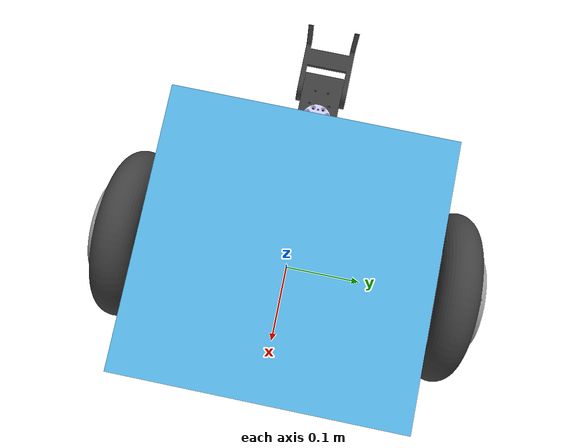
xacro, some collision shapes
<?xml version="1.0"?>
<robot name="amr" xmlns:xacro="http://www.ros.org/wiki/xacro">

  <xacro:include filename="$(find amr_description)/urdf/amr_inertials.xacro"/>

  <!-- Wheels (CAD: tyre torus R77 r23 at y = +-187.1 mm). Match amr_base/config/base.yaml. -->
  <xacro:property name="wheel_radius" value="0.100"/>
  <xacro:property name="wheel_separation" value="0.3742"/>
  <xacro:property name="wheel_width" value="0.046"/>

  <xacro:property name="mesh_dir" value="package://amr_description/meshes"/>

  <link name="base_footprint"/>

  <joint name="base_joint" type="fixed">
    <parent link="base_footprint"/>
    <child link="base_link"/>
    <origin xyz="0 0 ${wheel_radius}" rpy="0 0 0"/>
  </joint>

  <link name="base_link">
    <visual>
      <geometry><mesh filename="${mesh_dir}/base_link.dae"/></geometry>
    </visual>
    <!-- Main body -->
    <collision>
      <origin xyz="-0.0015 0 0.073"/>
      <geometry><box size="0.267 0.274 0.218"/></geometry>
    </collision>
    <!-- Base plate extension under the hitch -->
    <collision>
      <origin xyz="-0.1685 0 -0.033"/>
      <geometry><box size="0.067 0.270 0.006"/></geometry>
    </collision>
    <!-- Top deck and lidar mast -->
    <collision>
      <origin xyz="-0.018 0 0.204"/>
      <geometry><box size="0.194 0.220 0.047"/></geometry>
    </collision>
    <!-- Livox Mid-360 -->
    <collision>
      <origin xyz="-0.018 0 0.2575"/>
      <geometry><cylinder radius="0.0325" length="0.061"/></geometry>
    </collision>
    <!-- Wireless charging receiver -->
    <collision>
      <origin xyz="0.1625 0 0.017"/>
      <geometry><box size="0.063 0.136 0.136"/></geometry>
    </collision>
    <xacro:inertial_base_link/>
  </link>

  <xacro:macro name="wheel" params="side y">
    <joint name="${side}_wheel_joint" type="continuous">
      <parent link="base_link"/>
      <child link="${side}_wheel_link"/>
      <origin xyz="0 ${y} 0" rpy="0 0 0"/>
      <axis xyz="0 1 0"/>
    </joint>
    <link name="${side}_wheel_link">
      <visual>
        <geometry><mesh filename="${mesh_dir}/${side}_wheel_link.dae"/></geometry>
      </visual>
      <collision>
        <origin rpy="${pi/2} 0 0"/>
        <geometry><cylinder radius="${wheel_radius}" length="${wheel_width}"/></geometry>
      </collision>
      <xacro:call macro="inertial_${side}_wheel_link"/>
    </link>
  </xacro:macro>
  <xacro:wheel side="left" y="${wheel_separation/2}"/>
  <xacro:wheel side="right" y="${-wheel_separation/2}"/>

  <!-- Casters (CAD: wheel R20 at x = +-127, z = -44 mm). Visuals are in the base mesh. -->
  <xacro:macro name="caster" params="name x">
    <joint name="${name}_joint" type="fixed">
      <parent link="base_link"/>
      <child link="${name}_link"/>
      <origin xyz="${x} 0 -0.080"/>
    </joint>
    <link name="${name}_link">
      <collision><geometry><sphere radius="0.020"/></geometry></collision>
    </link>
  </xacro:macro>
  <xacro:caster name="front_caster" x="0.127"/>
  <xacro:caster name="rear_caster" x="-0.127"/>

  <joint name="hitch_yaw_joint" type="revolute">
    <parent link="base_link"/>
    <child link="hitch_yaw_link"/>
    <origin xyz="-0.1768 0 -0.0052" rpy="0 0 0"/>
    <axis xyz="0 0 1"/>
    <limit lower="${-pi/2}" upper="${pi/2}" effort="10.6" velocity="3.14"/>
  </joint>
  <link name="hitch_yaw_link">
    <visual>
      <geometry><mesh filename="${mesh_dir}/hitch_yaw_link.dae"/></geometry>
    </visual>
    <collision>
      <origin xyz="-0.0127 0 0"/>
      <geometry><box size="0.091 0.048 0.038"/></geometry>
    </collision>
    <xacro:inertial_hitch_yaw_link/>
  </link>

  <joint name="hitch_pitch_joint" type="revolute">
    <parent link="hitch_yaw_link"/>
    <child link="hitch_pitch_link"/>
    <origin xyz="-0.0422 0 0" rpy="0 0 0"/>
    <axis xyz="0 1 0"/>
    <limit lower="${-pi/2}" upper="${pi/2}" effort="10.6" velocity="3.14"/>
  </joint>
  <link name="hitch_pitch_link">
    <visual>
      <geometry><mesh filename="${mesh_dir}/hitch_pitch_link.dae"/></geometry>
    </visual>
    <collision>
      <origin xyz="-0.0225 0 0.0202"/>
      <geometry><box size="0.075 0.062 0.070"/></geometry>
    </collision>
    <xacro:inertial_hitch_pitch_link/>
  </link>

  <!-- Coupling pin hole at the hook tip (CAD: R5 hole at x = -268.6, z = 50.8 mm). -->
  <joint name="hitch_coupling_joint" type="fixed">
    <parent link="hitch_pitch_link"/>
    <child link="hitch_coupling_link"/>
    <origin xyz="-0.0496 0 0.0200"/>
  </joint>
  <link name="hitch_coupling_link"/>

  <joint name="livox_joint" type="fixed">
    <parent link="base_link"/>
    <child link="livox_frame"/>
    <origin xyz="-0.0181 0 0.227" rpy="0 0 0"/>
  </joint>
  <link name="livox_frame"/>

  <joint name="front_camera_joint" type="fixed">
    <parent link="base_link"/>
    <child link="front_camera_link"/>
    <origin xyz="0.1164 0.0175 0.0965" rpy="0 0 0"/>
  </joint>
  <link name="front_camera_link"/>

  <joint name="rear_camera_joint" type="fixed">
    <parent link="base_link"/>
    <child link="rear_camera_link"/>
    <origin xyz="-0.1277 -0.0175 0.1181" rpy="0 0 ${pi}"/>
  </joint>
  <link name="rear_camera_link"/>

  <!-- RealSense T265 (front), centre of the window. Not supported by current librealsense. -->
  <joint name="front_t265_joint" type="fixed">
    <parent link="base_link"/>
    <child link="front_t265_link"/>
    <origin xyz="0.1297 0 0.045" rpy="0 0 0"/>
  </joint>
  <link name="front_t265_link"/>

  <!-- Wireless charging receiver coil, x out of the coil face (for Nav2 docking). -->
  <joint name="charging_rx_joint" type="fixed">
    <parent link="base_link"/>
    <child link="charging_rx_link"/>
    <origin xyz="0.194 0 0.017" rpy="0 0 0"/>
  </joint>
  <link name="charging_rx_link"/>
</robot>

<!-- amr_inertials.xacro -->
<!-- GENERATED by tools/step_to_urdf.py from links.yaml. Do not edit by hand. -->
<robot xmlns:xacro="http://www.ros.org/wiki/xacro">
  <xacro:macro name="inertial_base_link">
    <inertial>
      <origin xyz="-0.00941 -0.00009 0.04855" rpy="0 0 0"/>
      <mass value="12.4805"/>
      <inertia ixx="1.294830e-01" ixy="1.095537e-06" ixz="5.555431e-03" iyy="1.497727e-01" iyz="-2.116543e-04" izz="1.431309e-01"/>
    </inertial>
  </xacro:macro>
  <xacro:macro name="inertial_hitch_pitch_link">
    <inertial>
      <origin xyz="-0.02318 0.00000 0.00868" rpy="0 0 0"/>
      <mass value="0.0503"/>
      <inertia ixx="3.557042e-05" ixy="3.244998e-19" ixz="8.353481e-06" iyy="2.901505e-05" iyz="-9.786218e-20" izz="5.322478e-05"/>
    </inertial>
  </xacro:macro>
  <xacro:macro name="inertial_hitch_yaw_link">
    <inertial>
      <origin xyz="-0.01712 -0.00041 0.00199" rpy="0 0 0"/>
      <mass value="0.2927"/>
      <inertia ixx="1.065805e-04" ixy="-1.318892e-06" ixz="-1.030101e-05" iyy="2.348790e-04" iyz="-1.185975e-07" izz="2.463903e-04"/>
    </inertial>
  </xacro:macro>
  <xacro:macro name="inertial_left_wheel_link">
    <inertial>
      <origin xyz="-0.00001 -0.00037 -0.00001" rpy="0 0 0"/>
      <mass value="3.8000"/>
      <inertia ixx="1.169836e-02" ixy="6.418364e-07" ixz="3.320479e-07" iyy="2.111097e-02" iyz="7.002133e-07" izz="1.169821e-02"/>
    </inertial>
  </xacro:macro>
  <xacro:macro name="inertial_right_wheel_link">
    <inertial>
      <origin xyz="0.00001 0.00037 -0.00001" rpy="0 0 0"/>
      <mass value="3.8000"/>
      <inertia ixx="1.169836e-02" ixy="6.418364e-07" ixz="-3.320479e-07" iyy="2.111097e-02" iyz="-7.002133e-07" izz="1.169821e-02"/>
    </inertial>
  </xacro:macro>
</robot>
